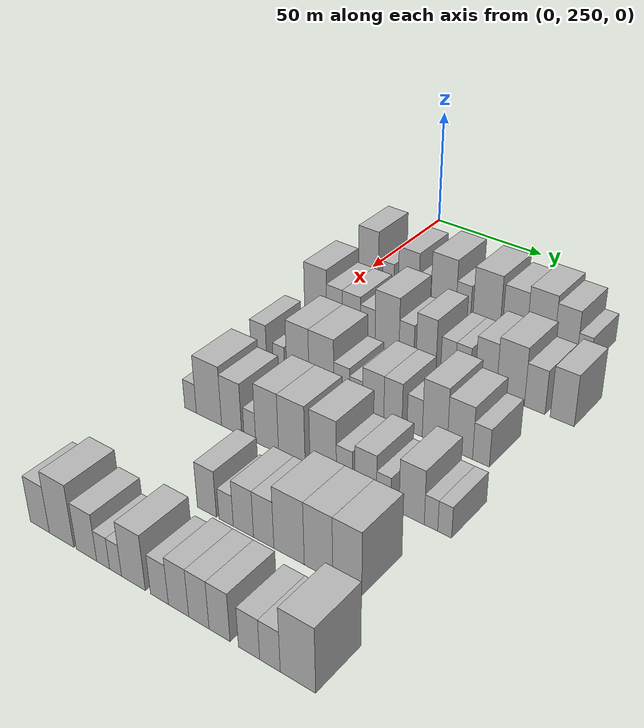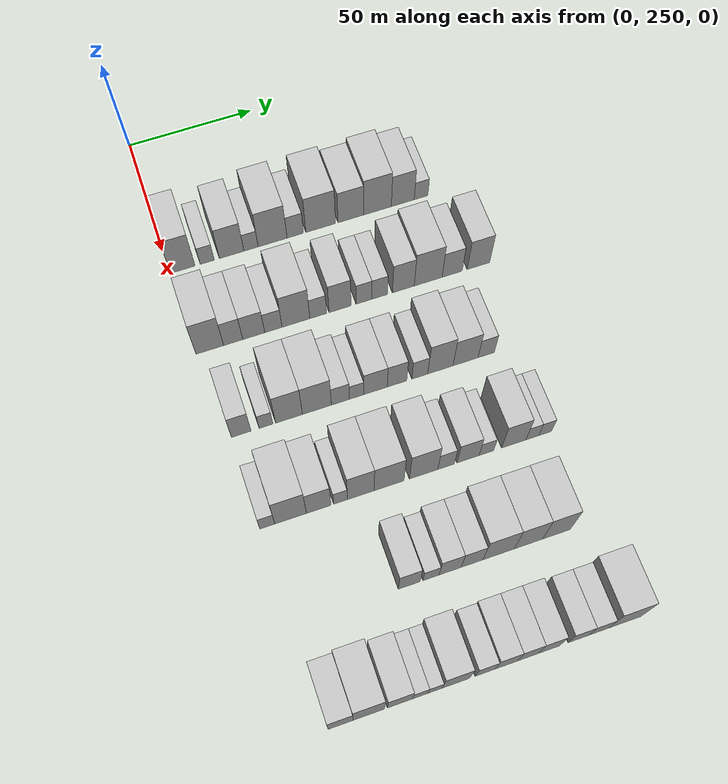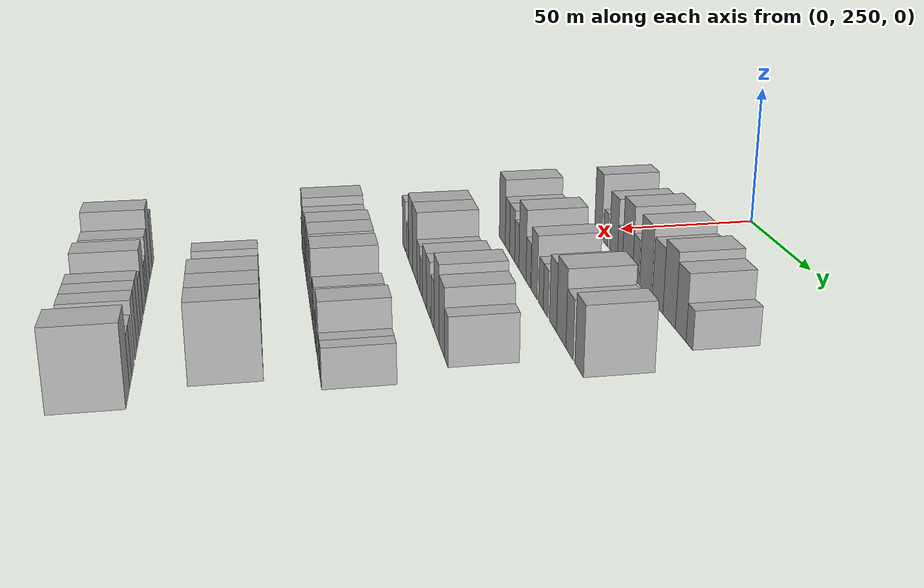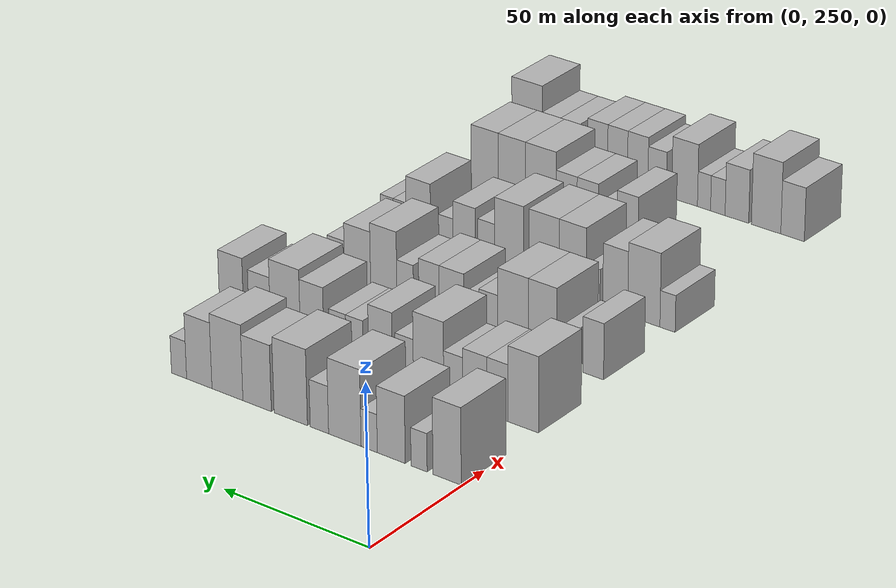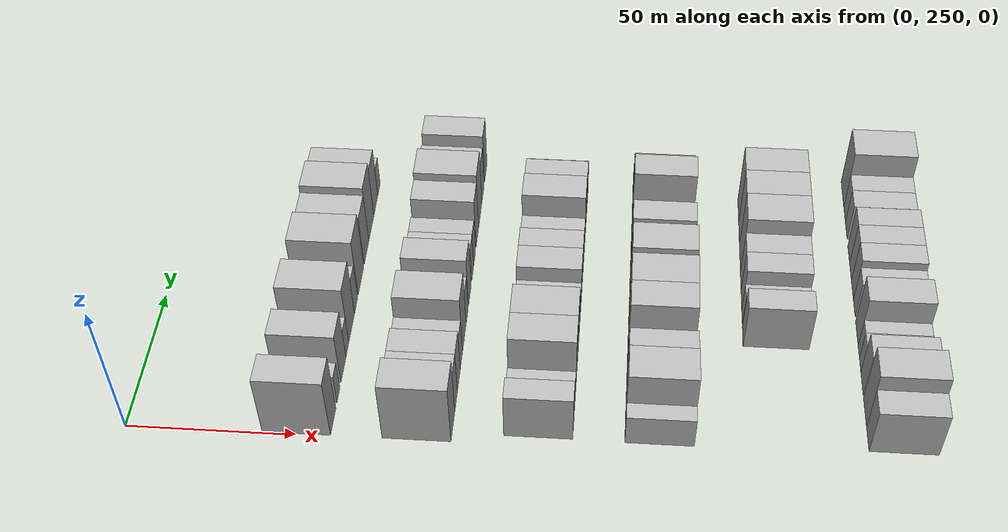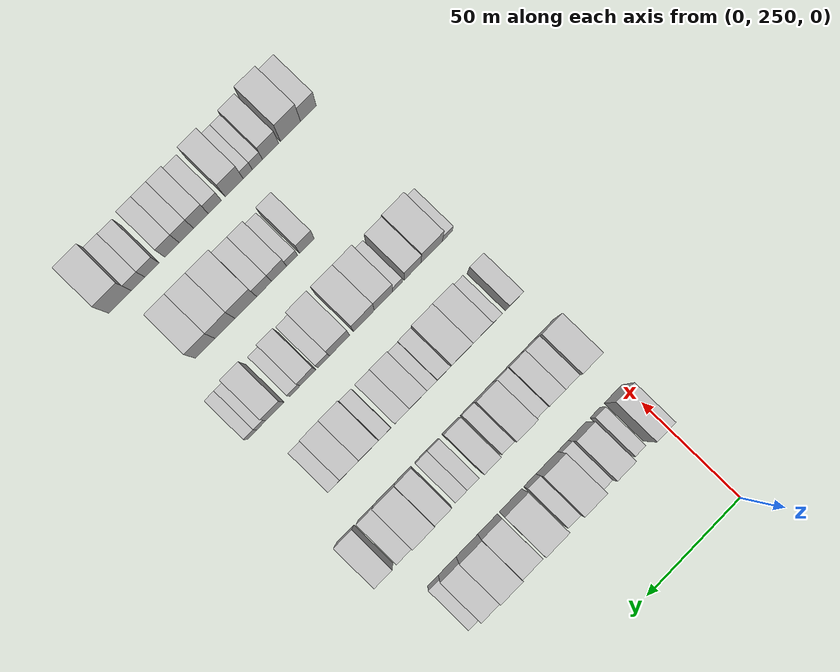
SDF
<sdf version="1.6">
 <world name="default">
  <model name="building_91">
   <static>1</static>
   <pose>50.0000 255.1759 0 0.000000 0.000000 0.000000</pose>
   <link name="link">
    <pose>0 0 12.00 0 0 0</pose>
    <collision name="collision"><geometry><box><size>20.0000 9.6289 24.0000</size></box></geometry></collision>
    <visual name="visual">
     <cast_shadows>0</cast_shadows>
     <geometry><box><size>20.0000 9.6289 24.0000</size></box></geometry>
     <material>
      <script>
       <uri>model://HANNAS_wall/materials/scripts</uri>
       <uri>model://HANNAS_wall/materials/textures</uri>
       <name>vrc/HANNAS_wall</name>
      </script>
     </material>
    </visual>
   </link>
  </model>
  <model name="building_92">
   <static>1</static>
   <pose>50.0000 264.7619 0 0.000000 0.000000 0.000000</pose>
   <link name="link">
    <pose>0 0 6.00 0 0 0</pose>
    <collision name="collision"><geometry><box><size>20.0000 5.5431 12.0000</size></box></geometry></collision>
    <visual name="visual">
     <cast_shadows>0</cast_shadows>
     <geometry><box><size>20.0000 5.5431 12.0000</size></box></geometry>
     <material>
      <script>
       <uri>model://HANNAS_wall/materials/scripts</uri>
       <uri>model://HANNAS_wall/materials/textures</uri>
       <name>vrc/HANNAS_wall</name>
      </script>
     </material>
    </visual>
   </link>
  </model>
  <model name="building_93">
   <static>1</static>
   <pose>50.0000 274.3921 0 0.000000 0.000000 0.000000</pose>
   <link name="link">
    <pose>0 0 10.50 0 0 0</pose>
    <collision name="collision"><geometry><box><size>20.0000 9.7174 21.0000</size></box></geometry></collision>
    <visual name="visual">
     <cast_shadows>0</cast_shadows>
     <geometry><box><size>20.0000 9.7174 21.0000</size></box></geometry>
     <material>
      <script>
       <uri>model://HANNAS_wall/materials/scripts</uri>
       <uri>model://HANNAS_wall/materials/textures</uri>
       <name>vrc/HANNAS_wall</name>
      </script>
     </material>
    </visual>
   </link>
  </model>
  <model name="building_94">
   <static>1</static>
   <pose>50.0000 282.0814 0 0.000000 0.000000 0.000000</pose>
   <link name="link">
    <pose>0 0 6.00 0 0 0</pose>
    <collision name="collision"><geometry><box><size>20.0000 5.6611 12.0000</size></box></geometry></collision>
    <visual name="visual">
     <cast_shadows>0</cast_shadows>
     <geometry><box><size>20.0000 5.6611 12.0000</size></box></geometry>
     <material>
      <script>
       <uri>model://HANNAS_wall/materials/scripts</uri>
       <uri>model://HANNAS_wall/materials/textures</uri>
       <name>vrc/HANNAS_wall</name>
      </script>
     </material>
    </visual>
   </link>
  </model>
  <model name="building_95">
   <static>1</static>
   <pose>50.0000 290.6606 0 0.000000 0.000000 0.000000</pose>
   <link name="link">
    <pose>0 0 12.00 0 0 0</pose>
    <collision name="collision"><geometry><box><size>20.0000 11.4973 24.0000</size></box></geometry></collision>
    <visual name="visual">
     <cast_shadows>0</cast_shadows>
     <geometry><box><size>20.0000 11.4973 24.0000</size></box></geometry>
     <material>
      <script>
       <uri>model://HANNAS_wall/materials/scripts</uri>
       <uri>model://HANNAS_wall/materials/textures</uri>
       <name>vrc/HANNAS_wall</name>
      </script>
     </material>
    </visual>
   </link>
  </model>
  <model name="building_96">
   <static>1</static>
   <pose>50.0000 299.6775 0 0.000000 0.000000 0.000000</pose>
   <link name="link">
    <pose>0 0 7.50 0 0 0</pose>
    <collision name="collision"><geometry><box><size>20.0000 6.5364 15.0000</size></box></geometry></collision>
    <visual name="visual">
     <cast_shadows>0</cast_shadows>
     <geometry><box><size>20.0000 6.5364 15.0000</size></box></geometry>
     <material>
      <script>
       <uri>model://HANNAS_wall/materials/scripts</uri>
       <uri>model://HANNAS_wall/materials/textures</uri>
       <name>vrc/HANNAS_wall</name>
      </script>
     </material>
    </visual>
   </link>
  </model>
  <model name="building_97">
   <static>1</static>
   <pose>50.0000 309.9370 0 0.000000 0.000000 0.000000</pose>
   <link name="link">
    <pose>0 0 12.00 0 0 0</pose>
    <collision name="collision"><geometry><box><size>20.0000 11.9828 24.0000</size></box></geometry></collision>
    <visual name="visual">
     <cast_shadows>0</cast_shadows>
     <geometry><box><size>20.0000 11.9828 24.0000</size></box></geometry>
     <material>
      <script>
       <uri>model://HANNAS_wall/materials/scripts</uri>
       <uri>model://HANNAS_wall/materials/textures</uri>
       <name>vrc/HANNAS_wall</name>
      </script>
     </material>
    </visual>
   </link>
  </model>
  <model name="building_98">
   <static>1</static>
   <pose>50.0000 322.1000 0 0.000000 0.000000 0.000000</pose>
   <link name="link">
    <pose>0 0 10.50 0 0 0</pose>
    <collision name="collision"><geometry><box><size>20.0000 10.3431 21.0000</size></box></geometry></collision>
    <visual name="visual">
     <cast_shadows>0</cast_shadows>
     <geometry><box><size>20.0000 10.3431 21.0000</size></box></geometry>
     <material>
      <script>
       <uri>model://HANNAS_wall/materials/scripts</uri>
       <uri>model://HANNAS_wall/materials/textures</uri>
       <name>vrc/HANNAS_wall</name>
      </script>
     </material>
    </visual>
   </link>
  </model>
  <model name="building_99">
   <static>1</static>
   <pose>50.0000 332.9563 0 0.000000 0.000000 0.000000</pose>
   <link name="link">
    <pose>0 0 12.00 0 0 0</pose>
    <collision name="collision"><geometry><box><size>20.0000 11.3695 24.0000</size></box></geometry></collision>
    <visual name="visual">
     <cast_shadows>0</cast_shadows>
     <geometry><box><size>20.0000 11.3695 24.0000</size></box></geometry>
     <material>
      <script>
       <uri>model://HANNAS_wall/materials/scripts</uri>
       <uri>model://HANNAS_wall/materials/textures</uri>
       <name>vrc/HANNAS_wall</name>
      </script>
     </material>
    </visual>
   </link>
  </model>
  <model name="building_100">
   <static>1</static>
   <pose>50.0000 343.3464 0 0.000000 0.000000 0.000000</pose>
   <link name="link">
    <pose>0 0 10.50 0 0 0</pose>
    <collision name="collision"><geometry><box><size>20.0000 9.4107 21.0000</size></box></geometry></collision>
    <visual name="visual">
     <cast_shadows>0</cast_shadows>
     <geometry><box><size>20.0000 9.4107 21.0000</size></box></geometry>
     <material>
      <script>
       <uri>model://HANNAS_wall/materials/scripts</uri>
       <uri>model://HANNAS_wall/materials/textures</uri>
       <name>vrc/HANNAS_wall</name>
      </script>
     </material>
    </visual>
   </link>
  </model>
  <model name="building_101">
   <static>1</static>
   <pose>50.0000 350.8720 0 0.000000 0.000000 0.000000</pose>
   <link name="link">
    <pose>0 0 6.00 0 0 0</pose>
    <collision name="collision"><geometry><box><size>20.0000 5.6406 12.0000</size></box></geometry></collision>
    <visual name="visual">
     <cast_shadows>0</cast_shadows>
     <geometry><box><size>20.0000 5.6406 12.0000</size></box></geometry>
     <material>
      <script>
       <uri>model://HANNAS_wall/materials/scripts</uri>
       <uri>model://HANNAS_wall/materials/textures</uri>
       <name>vrc/HANNAS_wall</name>
      </script>
     </material>
    </visual>
   </link>
  </model>
  <model name="building_222">
   <static>1</static>
   <pose>85.0000 255.6737 0 0.000000 0.000000 0.000000</pose>
   <link name="link">
    <pose>0 0 12.00 0 0 0</pose>
    <collision name="collision"><geometry><box><size>20.0000 10.5489 24.0000</size></box></geometry></collision>
    <visual name="visual">
     <cast_shadows>0</cast_shadows>
     <geometry><box><size>20.0000 10.5489 24.0000</size></box></geometry>
     <material>
      <script>
       <uri>model://HANNAS_wall/materials/scripts</uri>
       <uri>model://HANNAS_wall/materials/textures</uri>
       <name>vrc/HANNAS_wall</name>
      </script>
     </material>
    </visual>
   </link>
  </model>
  <model name="building_223">
   <static>1</static>
   <pose>85.0000 264.5933 0 0.000000 0.000000 0.000000</pose>
   <link name="link">
    <pose>0 0 9.00 0 0 0</pose>
    <collision name="collision"><geometry><box><size>20.0000 7.2904 18.0000</size></box></geometry></collision>
    <visual name="visual">
     <cast_shadows>0</cast_shadows>
     <geometry><box><size>20.0000 7.2904 18.0000</size></box></geometry>
     <material>
      <script>
       <uri>model://HANNAS_wall/materials/scripts</uri>
       <uri>model://HANNAS_wall/materials/textures</uri>
       <name>vrc/HANNAS_wall</name>
      </script>
     </material>
    </visual>
   </link>
  </model>
  <model name="building_224">
   <static>1</static>
   <pose>85.0000 272.4619 0 0.000000 0.000000 0.000000</pose>
   <link name="link">
    <pose>0 0 9.00 0 0 0</pose>
    <collision name="collision"><geometry><box><size>20.0000 8.4469 18.0000</size></box></geometry></collision>
    <visual name="visual">
     <cast_shadows>0</cast_shadows>
     <geometry><box><size>20.0000 8.4469 18.0000</size></box></geometry>
     <material>
      <script>
       <uri>model://HANNAS_wall/materials/scripts</uri>
       <uri>model://HANNAS_wall/materials/textures</uri>
       <name>vrc/HANNAS_wall</name>
      </script>
     </material>
    </visual>
   </link>
  </model>
  <model name="building_225">
   <static>1</static>
   <pose>85.0000 280.0327 0 0.000000 0.000000 0.000000</pose>
   <link name="link">
    <pose>0 0 7.50 0 0 0</pose>
    <collision name="collision"><geometry><box><size>20.0000 6.6946 15.0000</size></box></geometry></collision>
    <visual name="visual">
     <cast_shadows>0</cast_shadows>
     <geometry><box><size>20.0000 6.6946 15.0000</size></box></geometry>
     <material>
      <script>
       <uri>model://HANNAS_wall/materials/scripts</uri>
       <uri>model://HANNAS_wall/materials/textures</uri>
       <name>vrc/HANNAS_wall</name>
      </script>
     </material>
    </visual>
   </link>
  </model>
  <model name="building_226">
   <static>1</static>
   <pose>85.0000 288.7684 0 0.000000 0.000000 0.000000</pose>
   <link name="link">
    <pose>0 0 12.00 0 0 0</pose>
    <collision name="collision"><geometry><box><size>20.0000 10.7769 24.0000</size></box></geometry></collision>
    <visual name="visual">
     <cast_shadows>0</cast_shadows>
     <geometry><box><size>20.0000 10.7769 24.0000</size></box></geometry>
     <material>
      <script>
       <uri>model://HANNAS_wall/materials/scripts</uri>
       <uri>model://HANNAS_wall/materials/textures</uri>
       <name>vrc/HANNAS_wall</name>
      </script>
     </material>
    </visual>
   </link>
  </model>
  <model name="building_227">
   <static>1</static>
   <pose>85.0000 297.4031 0 0.000000 0.000000 0.000000</pose>
   <link name="link">
    <pose>0 0 7.50 0 0 0</pose>
    <collision name="collision"><geometry><box><size>20.0000 6.4925 15.0000</size></box></geometry></collision>
    <visual name="visual">
     <cast_shadows>0</cast_shadows>
     <geometry><box><size>20.0000 6.4925 15.0000</size></box></geometry>
     <material>
      <script>
       <uri>model://HANNAS_wall/materials/scripts</uri>
       <uri>model://HANNAS_wall/materials/textures</uri>
       <name>vrc/HANNAS_wall</name>
      </script>
     </material>
    </visual>
   </link>
  </model>
  <model name="building_228">
   <static>1</static>
   <pose>85.0000 305.9427 0 0.000000 0.000000 0.000000</pose>
   <link name="link">
    <pose>0 0 10.50 0 0 0</pose>
    <collision name="collision"><geometry><box><size>20.0000 8.5866 21.0000</size></box></geometry></collision>
    <visual name="visual">
     <cast_shadows>0</cast_shadows>
     <geometry><box><size>20.0000 8.5866 21.0000</size></box></geometry>
     <material>
      <script>
       <uri>model://HANNAS_wall/materials/scripts</uri>
       <uri>model://HANNAS_wall/materials/textures</uri>
       <name>vrc/HANNAS_wall</name>
      </script>
     </material>
    </visual>
   </link>
  </model>
  <model name="building_229">
   <static>1</static>
   <pose>85.0000 315.3324 0 0.000000 0.000000 0.000000</pose>
   <link name="link">
    <pose>0 0 7.50 0 0 0</pose>
    <collision name="collision"><geometry><box><size>20.0000 6.1928 15.0000</size></box></geometry></collision>
    <visual name="visual">
     <cast_shadows>0</cast_shadows>
     <geometry><box><size>20.0000 6.1928 15.0000</size></box></geometry>
     <material>
      <script>
       <uri>model://HANNAS_wall/materials/scripts</uri>
       <uri>model://HANNAS_wall/materials/textures</uri>
       <name>vrc/HANNAS_wall</name>
      </script>
     </material>
    </visual>
   </link>
  </model>
  <model name="building_230">
   <static>1</static>
   <pose>85.0000 321.5061 0 0.000000 0.000000 0.000000</pose>
   <link name="link">
    <pose>0 0 7.50 0 0 0</pose>
    <collision name="collision"><geometry><box><size>20.0000 6.1546 15.0000</size></box></geometry></collision>
    <visual name="visual">
     <cast_shadows>0</cast_shadows>
     <geometry><box><size>20.0000 6.1546 15.0000</size></box></geometry>
     <material>
      <script>
       <uri>model://HANNAS_wall/materials/scripts</uri>
       <uri>model://HANNAS_wall/materials/textures</uri>
       <name>vrc/HANNAS_wall</name>
      </script>
     </material>
    </visual>
   </link>
  </model>
  <model name="building_231">
   <static>1</static>
   <pose>85.0000 330.9312 0 0.000000 0.000000 0.000000</pose>
   <link name="link">
    <pose>0 0 10.50 0 0 0</pose>
    <collision name="collision"><geometry><box><size>20.0000 8.6957 21.0000</size></box></geometry></collision>
    <visual name="visual">
     <cast_shadows>0</cast_shadows>
     <geometry><box><size>20.0000 8.6957 21.0000</size></box></geometry>
     <material>
      <script>
       <uri>model://HANNAS_wall/materials/scripts</uri>
       <uri>model://HANNAS_wall/materials/textures</uri>
       <name>vrc/HANNAS_wall</name>
      </script>
     </material>
    </visual>
   </link>
  </model>
  <model name="building_232">
   <static>1</static>
   <pose>85.0000 340.8640 0 0.000000 0.000000 0.000000</pose>
   <link name="link">
    <pose>0 0 12.00 0 0 0</pose>
    <collision name="collision"><geometry><box><size>20.0000 11.1697 24.0000</size></box></geometry></collision>
    <visual name="visual">
     <cast_shadows>0</cast_shadows>
     <geometry><box><size>20.0000 11.1697 24.0000</size></box></geometry>
     <material>
      <script>
       <uri>model://HANNAS_wall/materials/scripts</uri>
       <uri>model://HANNAS_wall/materials/textures</uri>
       <name>vrc/HANNAS_wall</name>
      </script>
     </material>
    </visual>
   </link>
  </model>
  <model name="building_233">
   <static>1</static>
   <pose>85.0000 350.4869 0 0.000000 0.000000 0.000000</pose>
   <link name="link">
    <pose>0 0 9.00 0 0 0</pose>
    <collision name="collision"><geometry><box><size>20.0000 8.0762 18.0000</size></box></geometry></collision>
    <visual name="visual">
     <cast_shadows>0</cast_shadows>
     <geometry><box><size>20.0000 8.0762 18.0000</size></box></geometry>
     <material>
      <script>
       <uri>model://HANNAS_wall/materials/scripts</uri>
       <uri>model://HANNAS_wall/materials/textures</uri>
       <name>vrc/HANNAS_wall</name>
      </script>
     </material>
    </visual>
   </link>
  </model>
  <model name="building_234">
   <static>1</static>
   <pose>85.0000 361.0931 0 0.000000 0.000000 0.000000</pose>
   <link name="link">
    <pose>0 0 10.50 0 0 0</pose>
    <collision name="collision"><geometry><box><size>20.0000 9.1363 21.0000</size></box></geometry></collision>
    <visual name="visual">
     <cast_shadows>0</cast_shadows>
     <geometry><box><size>20.0000 9.1363 21.0000</size></box></geometry>
     <material>
      <script>
       <uri>model://HANNAS_wall/materials/scripts</uri>
       <uri>model://HANNAS_wall/materials/textures</uri>
       <name>vrc/HANNAS_wall</name>
      </script>
     </material>
    </visual>
   </link>
  </model>
  <model name="building_343">
   <static>1</static>
   <pose>120.0000 257.1583 0 0.000000 0.000000 0.000000</pose>
   <link name="link">
    <pose>0 0 9.00 0 0 0</pose>
    <collision name="collision"><geometry><box><size>20.0000 7.2707 18.0000</size></box></geometry></collision>
    <visual name="visual">
     <cast_shadows>0</cast_shadows>
     <geometry><box><size>20.0000 7.2707 18.0000</size></box></geometry>
     <material>
      <script>
       <uri>model://HANNAS_wall/materials/scripts</uri>
       <uri>model://HANNAS_wall/materials/textures</uri>
       <name>vrc/HANNAS_wall</name>
      </script>
     </material>
    </visual>
   </link>
  </model>
  <model name="building_344">
   <static>1</static>
   <pose>120.0000 266.3619 0 0.000000 0.000000 0.000000</pose>
   <link name="link">
    <pose>0 0 6.00 0 0 0</pose>
    <collision name="collision"><geometry><box><size>20.0000 5.1365 12.0000</size></box></geometry></collision>
    <visual name="visual">
     <cast_shadows>0</cast_shadows>
     <geometry><box><size>20.0000 5.1365 12.0000</size></box></geometry>
     <material>
      <script>
       <uri>model://HANNAS_wall/materials/scripts</uri>
       <uri>model://HANNAS_wall/materials/textures</uri>
       <name>vrc/HANNAS_wall</name>
      </script>
     </material>
    </visual>
   </link>
  </model>
  <model name="building_345">
   <static>1</static>
   <pose>120.0000 274.9572 0 0.000000 0.000000 0.000000</pose>
   <link name="link">
    <pose>0 0 12.00 0 0 0</pose>
    <collision name="collision"><geometry><box><size>20.0000 10.0542 24.0000</size></box></geometry></collision>
    <visual name="visual">
     <cast_shadows>0</cast_shadows>
     <geometry><box><size>20.0000 10.0542 24.0000</size></box></geometry>
     <material>
      <script>
       <uri>model://HANNAS_wall/materials/scripts</uri>
       <uri>model://HANNAS_wall/materials/textures</uri>
       <name>vrc/HANNAS_wall</name>
      </script>
     </material>
    </visual>
   </link>
  </model>
  <model name="building_346">
   <static>1</static>
   <pose>120.0000 285.4415 0 0.000000 0.000000 0.000000</pose>
   <link name="link">
    <pose>0 0 12.00 0 0 0</pose>
    <collision name="collision"><geometry><box><size>20.0000 10.9145 24.0000</size></box></geometry></collision>
    <visual name="visual">
     <cast_shadows>0</cast_shadows>
     <geometry><box><size>20.0000 10.9145 24.0000</size></box></geometry>
     <material>
      <script>
       <uri>model://HANNAS_wall/materials/scripts</uri>
       <uri>model://HANNAS_wall/materials/textures</uri>
       <name>vrc/HANNAS_wall</name>
      </script>
     </material>
    </visual>
   </link>
  </model>
  <model name="building_347">
   <static>1</static>
   <pose>120.0000 294.3001 0 0.000000 0.000000 0.000000</pose>
   <link name="link">
    <pose>0 0 7.50 0 0 0</pose>
    <collision name="collision"><geometry><box><size>20.0000 6.8026 15.0000</size></box></geometry></collision>
    <visual name="visual">
     <cast_shadows>0</cast_shadows>
     <geometry><box><size>20.0000 6.8026 15.0000</size></box></geometry>
     <material>
      <script>
       <uri>model://HANNAS_wall/materials/scripts</uri>
       <uri>model://HANNAS_wall/materials/textures</uri>
       <name>vrc/HANNAS_wall</name>
      </script>
     </material>
    </visual>
   </link>
  </model>
  <model name="building_348">
   <static>1</static>
   <pose>120.0000 300.4201 0 0.000000 0.000000 0.000000</pose>
   <link name="link">
    <pose>0 0 6.00 0 0 0</pose>
    <collision name="collision"><geometry><box><size>20.0000 5.4375 12.0000</size></box></geometry></collision>
    <visual name="visual">
     <cast_shadows>0</cast_shadows>
     <geometry><box><size>20.0000 5.4375 12.0000</size></box></geometry>
     <material>
      <script>
       <uri>model://HANNAS_wall/materials/scripts</uri>
       <uri>model://HANNAS_wall/materials/textures</uri>
       <name>vrc/HANNAS_wall</name>
      </script>
     </material>
    </visual>
   </link>
  </model>
  <model name="building_349">
   <static>1</static>
   <pose>120.0000 307.6240 0 0.000000 0.000000 0.000000</pose>
   <link name="link">
    <pose>0 0 9.00 0 0 0</pose>
    <collision name="collision"><geometry><box><size>20.0000 8.9702 18.0000</size></box></geometry></collision>
    <visual name="visual">
     <cast_shadows>0</cast_shadows>
     <geometry><box><size>20.0000 8.9702 18.0000</size></box></geometry>
     <material>
      <script>
       <uri>model://HANNAS_wall/materials/scripts</uri>
       <uri>model://HANNAS_wall/materials/textures</uri>
       <name>vrc/HANNAS_wall</name>
      </script>
     </material>
    </visual>
   </link>
  </model>
  <model name="building_350">
   <static>1</static>
   <pose>120.0000 315.8437 0 0.000000 0.000000 0.000000</pose>
   <link name="link">
    <pose>0 0 9.00 0 0 0</pose>
    <collision name="collision"><geometry><box><size>20.0000 7.4693 18.0000</size></box></geometry></collision>
    <visual name="visual">
     <cast_shadows>0</cast_shadows>
     <geometry><box><size>20.0000 7.4693 18.0000</size></box></geometry>
     <material>
      <script>
       <uri>model://HANNAS_wall/materials/scripts</uri>
       <uri>model://HANNAS_wall/materials/textures</uri>
       <name>vrc/HANNAS_wall</name>
      </script>
     </material>
    </visual>
   </link>
  </model>
  <model name="building_351">
   <static>1</static>
   <pose>120.0000 324.6476 0 0.000000 0.000000 0.000000</pose>
   <link name="link">
    <pose>0 0 7.50 0 0 0</pose>
    <collision name="collision"><geometry><box><size>20.0000 6.1387 15.0000</size></box></geometry></collision>
    <visual name="visual">
     <cast_shadows>0</cast_shadows>
     <geometry><box><size>20.0000 6.1387 15.0000</size></box></geometry>
     <material>
      <script>
       <uri>model://HANNAS_wall/materials/scripts</uri>
       <uri>model://HANNAS_wall/materials/textures</uri>
       <name>vrc/HANNAS_wall</name>
      </script>
     </material>
    </visual>
   </link>
  </model>
  <model name="building_352">
   <static>1</static>
   <pose>120.0000 332.6209 0 0.000000 0.000000 0.000000</pose>
   <link name="link">
    <pose>0 0 12.00 0 0 0</pose>
    <collision name="collision"><geometry><box><size>20.0000 9.8079 24.0000</size></box></geometry></collision>
    <visual name="visual">
     <cast_shadows>0</cast_shadows>
     <geometry><box><size>20.0000 9.8079 24.0000</size></box></geometry>
     <material>
      <script>
       <uri>model://HANNAS_wall/materials/scripts</uri>
       <uri>model://HANNAS_wall/materials/textures</uri>
       <name>vrc/HANNAS_wall</name>
      </script>
     </material>
    </visual>
   </link>
  </model>
  <model name="building_353">
   <static>1</static>
   <pose>120.0000 342.4141 0 0.000000 0.000000 0.000000</pose>
   <link name="link">
    <pose>0 0 10.50 0 0 0</pose>
    <collision name="collision"><geometry><box><size>20.0000 9.7784 21.0000</size></box></geometry></collision>
    <visual name="visual">
     <cast_shadows>0</cast_shadows>
     <geometry><box><size>20.0000 9.7784 21.0000</size></box></geometry>
     <material>
      <script>
       <uri>model://HANNAS_wall/materials/scripts</uri>
       <uri>model://HANNAS_wall/materials/textures</uri>
       <name>vrc/HANNAS_wall</name>
      </script>
     </material>
    </visual>
   </link>
  </model>
  <model name="building_354">
   <static>1</static>
   <pose>120.0000 350.4775 0 0.000000 0.000000 0.000000</pose>
   <link name="link">
    <pose>0 0 7.50 0 0 0</pose>
    <collision name="collision"><geometry><box><size>20.0000 6.3484 15.0000</size></box></geometry></collision>
    <visual name="visual">
     <cast_shadows>0</cast_shadows>
     <geometry><box><size>20.0000 6.3484 15.0000</size></box></geometry>
     <material>
      <script>
       <uri>model://HANNAS_wall/materials/scripts</uri>
       <uri>model://HANNAS_wall/materials/textures</uri>
       <name>vrc/HANNAS_wall</name>
      </script>
     </material>
    </visual>
   </link>
  </model>
  <model name="building_474">
   <static>1</static>
   <pose>155.0000 255.9908 0 0.000000 0.000000 0.000000</pose>
   <link name="link">
    <pose>0 0 6.00 0 0 0</pose>
    <collision name="collision"><geometry><box><size>20.0000 5.3552 12.0000</size></box></geometry></collision>
    <visual name="visual">
     <cast_shadows>0</cast_shadows>
     <geometry><box><size>20.0000 5.3552 12.0000</size></box></geometry>
     <material>
      <script>
       <uri>model://HANNAS_wall/materials/scripts</uri>
       <uri>model://HANNAS_wall/materials/textures</uri>
       <name>vrc/HANNAS_wall</name>
      </script>
     </material>
    </visual>
   </link>
  </model>
  <model name="building_475">
   <static>1</static>
   <pose>155.0000 264.3841 0 0.000000 0.000000 0.000000</pose>
   <link name="link">
    <pose>0 0 12.00 0 0 0</pose>
    <collision name="collision"><geometry><box><size>20.0000 11.4314 24.0000</size></box></geometry></collision>
    <visual name="visual">
     <cast_shadows>0</cast_shadows>
     <geometry><box><size>20.0000 11.4314 24.0000</size></box></geometry>
     <material>
      <script>
       <uri>model://HANNAS_wall/materials/scripts</uri>
       <uri>model://HANNAS_wall/materials/textures</uri>
       <name>vrc/HANNAS_wall</name>
      </script>
     </material>
    </visual>
   </link>
  </model>
  <model name="building_476">
   <static>1</static>
   <pose>155.0000 274.5647 0 0.000000 0.000000 0.000000</pose>
   <link name="link">
    <pose>0 0 10.50 0 0 0</pose>
    <collision name="collision"><geometry><box><size>20.0000 8.9300 21.0000</size></box></geometry></collision>
    <visual name="visual">
     <cast_shadows>0</cast_shadows>
     <geometry><box><size>20.0000 8.9300 21.0000</size></box></geometry>
     <material>
      <script>
       <uri>model://HANNAS_wall/materials/scripts</uri>
       <uri>model://HANNAS_wall/materials/textures</uri>
       <name>vrc/HANNAS_wall</name>
      </script>
     </material>
    </visual>
   </link>
  </model>
  <model name="building_477">
   <static>1</static>
   <pose>155.0000 282.5617 0 0.000000 0.000000 0.000000</pose>
   <link name="link">
    <pose>0 0 6.00 0 0 0</pose>
    <collision name="collision"><geometry><box><size>20.0000 5.0640 12.0000</size></box></geometry></collision>
    <visual name="visual">
     <cast_shadows>0</cast_shadows>
     <geometry><box><size>20.0000 5.0640 12.0000</size></box></geometry>
     <material>
      <script>
       <uri>model://HANNAS_wall/materials/scripts</uri>
       <uri>model://HANNAS_wall/materials/textures</uri>
       <name>vrc/HANNAS_wall</name>
      </script>
     </material>
    </visual>
   </link>
  </model>
  <model name="building_478">
   <static>1</static>
   <pose>155.0000 289.9795 0 0.000000 0.000000 0.000000</pose>
   <link name="link">
    <pose>0 0 12.00 0 0 0</pose>
    <collision name="collision"><geometry><box><size>20.0000 9.7716 24.0000</size></box></geometry></collision>
    <visual name="visual">
     <cast_shadows>0</cast_shadows>
     <geometry><box><size>20.0000 9.7716 24.0000</size></box></geometry>
     <material>
      <script>
       <uri>model://HANNAS_wall/materials/scripts</uri>
       <uri>model://HANNAS_wall/materials/textures</uri>
       <name>vrc/HANNAS_wall</name>
      </script>
     </material>
    </visual>
   </link>
  </model>
  <model name="building_479">
   <static>1</static>
   <pose>155.0000 300.3820 0 0.000000 0.000000 0.000000</pose>
   <link name="link">
    <pose>0 0 12.00 0 0 0</pose>
    <collision name="collision"><geometry><box><size>20.0000 11.0334 24.0000</size></box></geometry></collision>
    <visual name="visual">
     <cast_shadows>0</cast_shadows>
     <geometry><box><size>20.0000 11.0334 24.0000</size></box></geometry>
     <material>
      <script>
       <uri>model://HANNAS_wall/materials/scripts</uri>
       <uri>model://HANNAS_wall/materials/textures</uri>
       <name>vrc/HANNAS_wall</name>
      </script>
     </material>
    </visual>
   </link>
  </model>
  <model name="building_480">
   <static>1</static>
   <pose>155.0000 313.2065 0 0.000000 0.000000 0.000000</pose>
   <link name="link">
    <pose>0 0 12.00 0 0 0</pose>
    <collision name="collision"><geometry><box><size>20.0000 10.6155 24.0000</size></box></geometry></collision>
    <visual name="visual">
     <cast_shadows>0</cast_shadows>
     <geometry><box><size>20.0000 10.6155 24.0000</size></box></geometry>
     <material>
      <script>
       <uri>model://HANNAS_wall/materials/scripts</uri>
       <uri>model://HANNAS_wall/materials/textures</uri>
       <name>vrc/HANNAS_wall</name>
      </script>
     </material>
    </visual>
   </link>
  </model>
  <model name="building_481">
   <static>1</static>
   <pose>155.0000 321.6213 0 0.000000 0.000000 0.000000</pose>
   <link name="link">
    <pose>0 0 7.50 0 0 0</pose>
    <collision name="collision"><geometry><box><size>20.0000 6.2141 15.0000</size></box></geometry></collision>
    <visual name="visual">
     <cast_shadows>0</cast_shadows>
     <geometry><box><size>20.0000 6.2141 15.0000</size></box></geometry>
     <material>
      <script>
       <uri>model://HANNAS_wall/materials/scripts</uri>
       <uri>model://HANNAS_wall/materials/textures</uri>
       <name>vrc/HANNAS_wall</name>
      </script>
     </material>
    </visual>
   </link>
  </model>
  <model name="building_482">
   <static>1</static>
   <pose>155.0000 329.8804 0 0.000000 0.000000 0.000000</pose>
   <link name="link">
    <pose>0 0 9.00 0 0 0</pose>
    <collision name="collision"><geometry><box><size>20.0000 8.3043 18.0000</size></box></geometry></collision>
    <visual name="visual">
     <cast_shadows>0</cast_shadows>
     <geometry><box><size>20.0000 8.3043 18.0000</size></box></geometry>
     <material>
      <script>
       <uri>model://HANNAS_wall/materials/scripts</uri>
       <uri>model://HANNAS_wall/materials/textures</uri>
       <name>vrc/HANNAS_wall</name>
      </script>
     </material>
    </visual>
   </link>
  </model>
  <model name="building_483">
   <static>1</static>
   <pose>155.0000 336.7921 0 0.000000 0.000000 0.000000</pose>
   <link name="link">
    <pose>0 0 6.00 0 0 0</pose>
    <collision name="collision"><geometry><box><size>20.0000 5.5191 12.0000</size></box></geometry></collision>
    <visual name="visual">
     <cast_shadows>0</cast_shadows>
     <geometry><box><size>20.0000 5.5191 12.0000</size></box></geometry>
     <material>
      <script>
       <uri>model://HANNAS_wall/materials/scripts</uri>
       <uri>model://HANNAS_wall/materials/textures</uri>
       <name>vrc/HANNAS_wall</name>
      </script>
     </material>
    </visual>
   </link>
  </model>
  <model name="building_484">
   <static>1</static>
   <pose>155.0000 347.1941 0 0.000000 0.000000 0.000000</pose>
   <link name="link">
    <pose>0 0 10.50 0 0 0</pose>
    <collision name="collision"><geometry><box><size>20.0000 9.2847 21.0000</size></box></geometry></collision>
    <visual name="visual">
     <cast_shadows>0</cast_shadows>
     <geometry><box><size>20.0000 9.2847 21.0000</size></box></geometry>
     <material>
      <script>
       <uri>model://HANNAS_wall/materials/scripts</uri>
       <uri>model://HANNAS_wall/materials/textures</uri>
       <name>vrc/HANNAS_wall</name>
      </script>
     </material>
    </visual>
   </link>
  </model>
  <model name="building_485">
   <static>1</static>
   <pose>155.0000 354.2844 0 0.000000 0.000000 0.000000</pose>
   <link name="link">
    <pose>0 0 6.00 0 0 0</pose>
    <collision name="collision"><geometry><box><size>20.0000 4.8961 12.0000</size></box></geometry></collision>
    <visual name="visual">
     <cast_shadows>0</cast_shadows>
     <geometry><box><size>20.0000 4.8961 12.0000</size></box></geometry>
     <material>
      <script>
       <uri>model://HANNAS_wall/materials/scripts</uri>
       <uri>model://HANNAS_wall/materials/textures</uri>
       <name>vrc/HANNAS_wall</name>
      </script>
     </material>
    </visual>
   </link>
  </model>
  <model name="building_486">
   <static>1</static>
   <pose>155.0000 359.2161 0 0.000000 0.000000 0.000000</pose>
   <link name="link">
    <pose>0 0 6.00 0 0 0</pose>
    <collision name="collision"><geometry><box><size>20.0000 4.9672 12.0000</size></box></geometry></collision>
    <visual name="visual">
     <cast_shadows>0</cast_shadows>
     <geometry><box><size>20.0000 4.9672 12.0000</size></box></geometry>
     <material>
      <script>
       <uri>model://HANNAS_wall/materials/scripts</uri>
       <uri>model://HANNAS_wall/materials/textures</uri>
       <name>vrc/HANNAS_wall</name>
      </script>
     </material>
    </visual>
   </link>
  </model>
  <model name="building_608">
   <static>1</static>
   <pose>190.0000 295.1527 0 0.000000 0.000000 0.000000</pose>
   <link name="link">
    <pose>0 0 9.00 0 0 0</pose>
    <collision name="collision"><geometry><box><size>20.0000 7.8265 18.0000</size></box></geometry></collision>
    <visual name="visual">
     <cast_shadows>0</cast_shadows>
     <geometry><box><size>20.0000 7.8265 18.0000</size></box></geometry>
     <material>
      <script>
       <uri>model://HANNAS_wall/materials/scripts</uri>
       <uri>model://HANNAS_wall/materials/textures</uri>
       <name>vrc/HANNAS_wall</name>
      </script>
     </material>
    </visual>
   </link>
  </model>
  <model name="building_609">
   <static>1</static>
   <pose>190.0000 302.9664 0 0.000000 0.000000 0.000000</pose>
   <link name="link">
    <pose>0 0 6.00 0 0 0</pose>
    <collision name="collision"><geometry><box><size>20.0000 5.8009 12.0000</size></box></geometry></collision>
    <visual name="visual">
     <cast_shadows>0</cast_shadows>
     <geometry><box><size>20.0000 5.8009 12.0000</size></box></geometry>
     <material>
      <script>
       <uri>model://HANNAS_wall/materials/scripts</uri>
       <uri>model://HANNAS_wall/materials/textures</uri>
       <name>vrc/HANNAS_wall</name>
      </script>
     </material>
    </visual>
   </link>
  </model>
  <model name="building_610">
   <static>1</static>
   <pose>190.0000 309.8742 0 0.000000 0.000000 0.000000</pose>
   <link name="link">
    <pose>0 0 9.00 0 0 0</pose>
    <collision name="collision"><geometry><box><size>20.0000 8.0148 18.0000</size></box></geometry></collision>
    <visual name="visual">
     <cast_shadows>0</cast_shadows>
     <geometry><box><size>20.0000 8.0148 18.0000</size></box></geometry>
     <material>
      <script>
       <uri>model://HANNAS_wall/materials/scripts</uri>
       <uri>model://HANNAS_wall/materials/textures</uri>
       <name>vrc/HANNAS_wall</name>
      </script>
     </material>
    </visual>
   </link>
  </model>
  <model name="building_611">
   <static>1</static>
   <pose>190.0000 317.8206 0 0.000000 0.000000 0.000000</pose>
   <link name="link">
    <pose>0 0 9.00 0 0 0</pose>
    <collision name="collision"><geometry><box><size>20.0000 7.8780 18.0000</size></box></geometry></collision>
    <visual name="visual">
     <cast_shadows>0</cast_shadows>
     <geometry><box><size>20.0000 7.8780 18.0000</size></box></geometry>
     <material>
      <script>
       <uri>model://HANNAS_wall/materials/scripts</uri>
       <uri>model://HANNAS_wall/materials/textures</uri>
       <name>vrc/HANNAS_wall</name>
      </script>
     </material>
    </visual>
   </link>
  </model>
  <model name="building_612">
   <static>1</static>
   <pose>190.0000 327.4898 0 0.000000 0.000000 0.000000</pose>
   <link name="link">
    <pose>0 0 12.00 0 0 0</pose>
    <collision name="collision"><geometry><box><size>20.0000 11.4604 24.0000</size></box></geometry></collision>
    <visual name="visual">
     <cast_shadows>0</cast_shadows>
     <geometry><box><size>20.0000 11.4604 24.0000</size></box></geometry>
     <material>
      <script>
       <uri>model://HANNAS_wall/materials/scripts</uri>
       <uri>model://HANNAS_wall/materials/textures</uri>
       <name>vrc/HANNAS_wall</name>
      </script>
     </material>
    </visual>
   </link>
  </model>
  <model name="building_613">
   <static>1</static>
   <pose>190.0000 338.4359 0 0.000000 0.000000 0.000000</pose>
   <link name="link">
    <pose>0 0 12.00 0 0 0</pose>
    <collision name="collision"><geometry><box><size>20.0000 10.4319 24.0000</size></box></geometry></collision>
    <visual name="visual">
     <cast_shadows>0</cast_shadows>
     <geometry><box><size>20.0000 10.4319 24.0000</size></box></geometry>
     <material>
      <script>
       <uri>model://HANNAS_wall/materials/scripts</uri>
       <uri>model://HANNAS_wall/materials/textures</uri>
       <name>vrc/HANNAS_wall</name>
      </script>
     </material>
    </visual>
   </link>
  </model>
  <model name="building_614">
   <static>1</static>
   <pose>190.0000 348.8125 0 0.000000 0.000000 0.000000</pose>
   <link name="link">
    <pose>0 0 12.00 0 0 0</pose>
    <collision name="collision"><geometry><box><size>20.0000 10.3211 24.0000</size></box></geometry></collision>
    <visual name="visual">
     <cast_shadows>0</cast_shadows>
     <geometry><box><size>20.0000 10.3211 24.0000</size></box></geometry>
     <material>
      <script>
       <uri>model://HANNAS_wall/materials/scripts</uri>
       <uri>model://HANNAS_wall/materials/textures</uri>
       <name>vrc/HANNAS_wall</name>
      </script>
     </material>
    </visual>
   </link>
  </model>
  <model name="building_728">
   <static>1</static>
   <pose>225.0000 259.0152 0 0.000000 0.000000 0.000000</pose>
   <link name="link">
    <pose>0 0 9.00 0 0 0</pose>
    <collision name="collision"><geometry><box><size>20.0000 8.4533 18.0000</size></box></geometry></collision>
    <visual name="visual">
     <cast_shadows>0</cast_shadows>
     <geometry><box><size>20.0000 8.4533 18.0000</size></box></geometry>
     <material>
      <script>
       <uri>model://HANNAS_wall/materials/scripts</uri>
       <uri>model://HANNAS_wall/materials/textures</uri>
       <name>vrc/HANNAS_wall</name>
      </script>
     </material>
    </visual>
   </link>
  </model>
  <model name="building_729">
   <static>1</static>
   <pose>225.0000 268.5774 0 0.000000 0.000000 0.000000</pose>
   <link name="link">
    <pose>0 0 12.00 0 0 0</pose>
    <collision name="collision"><geometry><box><size>20.0000 10.6711 24.0000</size></box></geometry></collision>
    <visual name="visual">
     <cast_shadows>0</cast_shadows>
     <geometry><box><size>20.0000 10.6711 24.0000</size></box></geometry>
     <material>
      <script>
       <uri>model://HANNAS_wall/materials/scripts</uri>
       <uri>model://HANNAS_wall/materials/textures</uri>
       <name>vrc/HANNAS_wall</name>
      </script>
     </material>
    </visual>
   </link>
  </model>
  <model name="building_730">
   <static>1</static>
   <pose>225.0000 279.2312 0 0.000000 0.000000 0.000000</pose>
   <link name="link">
    <pose>0 0 9.00 0 0 0</pose>
    <collision name="collision"><geometry><box><size>20.0000 8.6366 18.0000</size></box></geometry></collision>
    <visual name="visual">
     <cast_shadows>0</cast_shadows>
     <geometry><box><size>20.0000 8.6366 18.0000</size></box></geometry>
     <material>
      <script>
       <uri>model://HANNAS_wall/materials/scripts</uri>
       <uri>model://HANNAS_wall/materials/textures</uri>
       <name>vrc/HANNAS_wall</name>
      </script>
     </material>
    </visual>
   </link>
  </model>
  <model name="building_731">
   <static>1</static>
   <pose>225.0000 286.2283 0 0.000000 0.000000 0.000000</pose>
   <link name="link">
    <pose>0 0 6.00 0 0 0</pose>
    <collision name="collision"><geometry><box><size>20.0000 5.3576 12.0000</size></box></geometry></collision>
    <visual name="visual">
     <cast_shadows>0</cast_shadows>
     <geometry><box><size>20.0000 5.3576 12.0000</size></box></geometry>
     <material>
      <script>
       <uri>model://HANNAS_wall/materials/scripts</uri>
       <uri>model://HANNAS_wall/materials/textures</uri>
       <name>vrc/HANNAS_wall</name>
      </script>
     </material>
    </visual>
   </link>
  </model>
  <model name="building_732">
   <static>1</static>
   <pose>225.0000 291.3353 0 0.000000 0.000000 0.000000</pose>
   <link name="link">
    <pose>0 0 6.00 0 0 0</pose>
    <collision name="collision"><geometry><box><size>20.0000 4.8563 12.0000</size></box></geometry></collision>
    <visual name="visual">
     <cast_shadows>0</cast_shadows>
     <geometry><box><size>20.0000 4.8563 12.0000</size></box></geometry>
     <material>
      <script>
       <uri>model://HANNAS_wall/materials/scripts</uri>
       <uri>model://HANNAS_wall/materials/textures</uri>
       <name>vrc/HANNAS_wall</name>
      </script>
     </material>
    </visual>
   </link>
  </model>
  <model name="building_733">
   <static>1</static>
   <pose>225.0000 298.5449 0 0.000000 0.000000 0.000000</pose>
   <link name="link">
    <pose>0 0 10.50 0 0 0</pose>
    <collision name="collision"><geometry><box><size>20.0000 9.5629 21.0000</size></box></geometry></collision>
    <visual name="visual">
     <cast_shadows>0</cast_shadows>
     <geometry><box><size>20.0000 9.5629 21.0000</size></box></geometry>
     <material>
      <script>
       <uri>model://HANNAS_wall/materials/scripts</uri>
       <uri>model://HANNAS_wall/materials/textures</uri>
       <name>vrc/HANNAS_wall</name>
      </script>
     </material>
    </visual>
   </link>
  </model>
  <model name="building_734">
   <static>1</static>
   <pose>225.0000 308.8115 0 0.000000 0.000000 0.000000</pose>
   <link name="link">
    <pose>0 0 7.50 0 0 0</pose>
    <collision name="collision"><geometry><box><size>20.0000 6.9703 15.0000</size></box></geometry></collision>
    <visual name="visual">
     <cast_shadows>0</cast_shadows>
     <geometry><box><size>20.0000 6.9703 15.0000</size></box></geometry>
     <material>
      <script>
       <uri>model://HANNAS_wall/materials/scripts</uri>
       <uri>model://HANNAS_wall/materials/textures</uri>
       <name>vrc/HANNAS_wall</name>
      </script>
     </material>
    </visual>
   </link>
  </model>
  <model name="building_735">
   <static>1</static>
   <pose>225.0000 316.1770 0 0.000000 0.000000 0.000000</pose>
   <link name="link">
    <pose>0 0 9.00 0 0 0</pose>
    <collision name="collision"><geometry><box><size>20.0000 7.7606 18.0000</size></box></geometry></collision>
    <visual name="visual">
     <cast_shadows>0</cast_shadows>
     <geometry><box><size>20.0000 7.7606 18.0000</size></box></geometry>
     <material>
      <script>
       <uri>model://HANNAS_wall/materials/scripts</uri>
       <uri>model://HANNAS_wall/materials/textures</uri>
       <name>vrc/HANNAS_wall</name>
      </script>
     </material>
    </visual>
   </link>
  </model>
  <model name="building_736">
   <static>1</static>
   <pose>225.0000 323.8389 0 0.000000 0.000000 0.000000</pose>
   <link name="link">
    <pose>0 0 9.00 0 0 0</pose>
    <collision name="collision"><geometry><box><size>20.0000 7.5633 18.0000</size></box></geometry></collision>
    <visual name="visual">
     <cast_shadows>0</cast_shadows>
     <geometry><box><size>20.0000 7.5633 18.0000</size></box></geometry>
     <material>
      <script>
       <uri>model://HANNAS_wall/materials/scripts</uri>
       <uri>model://HANNAS_wall/materials/textures</uri>
       <name>vrc/HANNAS_wall</name>
      </script>
     </material>
    </visual>
   </link>
  </model>
  <model name="building_737">
   <static>1</static>
   <pose>225.0000 331.4374 0 0.000000 0.000000 0.000000</pose>
   <link name="link">
    <pose>0 0 9.00 0 0 0</pose>
    <collision name="collision"><geometry><box><size>20.0000 7.6336 18.0000</size></box></geometry></collision>
    <visual name="visual">
     <cast_shadows>0</cast_shadows>
     <geometry><box><size>20.0000 7.6336 18.0000</size></box></geometry>
     <material>
      <script>
       <uri>model://HANNAS_wall/materials/scripts</uri>
       <uri>model://HANNAS_wall/materials/textures</uri>
       <name>vrc/HANNAS_wall</name>
      </script>
     </material>
    </visual>
   </link>
  </model>
  <model name="building_738">
   <static>1</static>
   <pose>225.0000 341.9950 0 0.000000 0.000000 0.000000</pose>
   <link name="link">
    <pose>0 0 7.50 0 0 0</pose>
    <collision name="collision"><geometry><box><size>20.0000 7.4816 15.0000</size></box></geometry></collision>
    <visual name="visual">
     <cast_shadows>0</cast_shadows>
     <geometry><box><size>20.0000 7.4816 15.0000</size></box></geometry>
     <material>
      <script>
       <uri>model://HANNAS_wall/materials/scripts</uri>
       <uri>model://HANNAS_wall/materials/textures</uri>
       <name>vrc/HANNAS_wall</name>
      </script>
     </material>
    </visual>
   </link>
  </model>
  <model name="building_739">
   <static>1</static>
   <pose>225.0000 349.2842 0 0.000000 0.000000 0.000000</pose>
   <link name="link">
    <pose>0 0 7.50 0 0 0</pose>
    <collision name="collision"><geometry><box><size>20.0000 7.0969 15.0000</size></box></geometry></collision>
    <visual name="visual">
     <cast_shadows>0</cast_shadows>
     <geometry><box><size>20.0000 7.0969 15.0000</size></box></geometry>
     <material>
      <script>
       <uri>model://HANNAS_wall/materials/scripts</uri>
       <uri>model://HANNAS_wall/materials/textures</uri>
       <name>vrc/HANNAS_wall</name>
      </script>
     </material>
    </visual>
   </link>
  </model>
  <model name="building_740">
   <static>1</static>
   <pose>225.0000 358.7659 0 0.000000 0.000000 0.000000</pose>
   <link name="link">
    <pose>0 0 12.00 0 0 0</pose>
    <collision name="collision"><geometry><box><size>20.0000 11.8665 24.0000</size></box></geometry></collision>
    <visual name="visual">
     <cast_shadows>0</cast_shadows>
     <geometry><box><size>20.0000 11.8665 24.0000</size></box></geometry>
     <material>
      <script>
       <uri>model://HANNAS_wall/materials/scripts</uri>
       <uri>model://HANNAS_wall/materials/textures</uri>
       <name>vrc/HANNAS_wall</name>
      </script>
     </material>
    </visual>
   </link>
  </model>
 </world>
</sdf>
